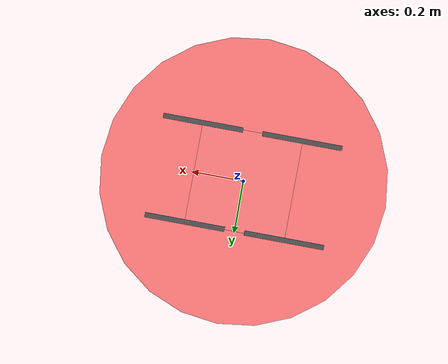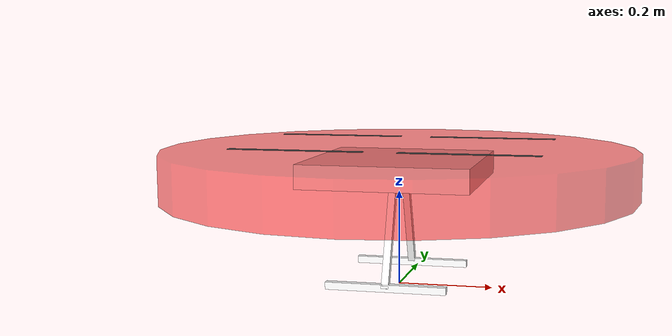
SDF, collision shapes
<?xml version="1.0" encoding="UTF-8"?>
<sdf version='1.9'>
  <model name='x500'>
    <include merge='true'>
      <uri>model://x500_base</uri>
    </include>

    <!-- Motor plugins -->
    <plugin filename="gz-sim-multicopter-motor-model-system" name="gz::sim::systems::MulticopterMotorModel">
      <robotNamespace>x500</robotNamespace>
      <jointName>rotor_0_joint</jointName>
      <linkName>rotor_0</linkName>
      <turningDirection>ccw</turningDirection>
      <timeConstantUp>0.0125</timeConstantUp>
      <timeConstantDown>0.025</timeConstantDown>
      <maxRotVelocity>1000.0</maxRotVelocity>
      <motorConstant>8.54858e-06</motorConstant>
      <momentConstant>0.016</momentConstant>
      <commandSubTopic>command/motor_speed</commandSubTopic>
      <actuator_number>0</actuator_number>
      <rotorDragCoefficient>8.06428e-05</rotorDragCoefficient>
      <rollingMomentCoefficient>1e-06</rollingMomentCoefficient>
      <rotorVelocitySlowdownSim>10</rotorVelocitySlowdownSim>
      <motorType>velocity</motorType>
    </plugin>

    <plugin filename="gz-sim-multicopter-motor-model-system" name="gz::sim::systems::MulticopterMotorModel">
      <robotNamespace>x500</robotNamespace>
      <jointName>rotor_1_joint</jointName>
      <linkName>rotor_1</linkName>
      <turningDirection>ccw</turningDirection>
      <timeConstantUp>0.0125</timeConstantUp>
      <timeConstantDown>0.025</timeConstantDown>
      <maxRotVelocity>1000.0</maxRotVelocity>
      <motorConstant>8.54858e-06</motorConstant>
      <momentConstant>0.016</momentConstant>
      <commandSubTopic>command/motor_speed</commandSubTopic>
      <actuator_number>1</actuator_number>
      <rotorDragCoefficient>8.06428e-05</rotorDragCoefficient>
      <rollingMomentCoefficient>1e-06</rollingMomentCoefficient>
      <rotorVelocitySlowdownSim>10</rotorVelocitySlowdownSim>
      <motorType>velocity</motorType>
    </plugin>

    <plugin filename="gz-sim-multicopter-motor-model-system" name="gz::sim::systems::MulticopterMotorModel">
      <robotNamespace>x500</robotNamespace>
      <jointName>rotor_2_joint</jointName>
      <linkName>rotor_2</linkName>
      <turningDirection>cw</turningDirection>
      <timeConstantUp>0.0125</timeConstantUp>
      <timeConstantDown>0.025</timeConstantDown>
      <maxRotVelocity>1000.0</maxRotVelocity>
      <motorConstant>8.54858e-06</motorConstant>
      <momentConstant>0.016</momentConstant>
      <commandSubTopic>command/motor_speed</commandSubTopic>
      <actuator_number>2</actuator_number>
      <rotorDragCoefficient>8.06428e-05</rotorDragCoefficient>
      <rollingMomentCoefficient>1e-06</rollingMomentCoefficient>
      <rotorVelocitySlowdownSim>10</rotorVelocitySlowdownSim>
      <motorType>velocity</motorType>
    </plugin>

    <plugin filename="gz-sim-multicopter-motor-model-system" name="gz::sim::systems::MulticopterMotorModel">
      <robotNamespace>x500</robotNamespace>
      <jointName>rotor_3_joint</jointName>
      <linkName>rotor_3</linkName>
      <turningDirection>cw</turningDirection>
      <timeConstantUp>0.0125</timeConstantUp>
      <timeConstantDown>0.025</timeConstantDown>
      <maxRotVelocity>1000.0</maxRotVelocity>
      <motorConstant>8.54858e-06</motorConstant>
      <momentConstant>0.016</momentConstant>
      <commandSubTopic>command/motor_speed</commandSubTopic>
      <actuator_number>3</actuator_number>
      <rotorDragCoefficient>8.06428e-05</rotorDragCoefficient>
      <rollingMomentCoefficient>1e-06</rollingMomentCoefficient>
      <rotorVelocitySlowdownSim>10</rotorVelocitySlowdownSim>
      <motorType>velocity</motorType>
    </plugin>

    <!-- Odometry plugin -->
    <plugin filename="gz-sim-odometry-publisher-system" name="gz::sim::systems::OdometryPublisher">
      <odom_topic>x500/odometry</odom_topic>
      <dimensions>3</dimensions>
    </plugin>

    <plugin name="gz::sim::systems::Contact" filename="gz-sim-contact-system" >

    </plugin>

    <!-- Velocity controller plugin -->
    <plugin filename="gz-sim-multicopter-control-system" name="gz::sim::systems::MulticopterVelocityControl">
      <robotNamespace>x500</robotNamespace>
      <commandSubTopic>command/twist</commandSubTopic>
      <enableSubTopic>enabled_motors</enableSubTopic>
      <comLinkName>base_link</comLinkName>
      <velocityGain>2.7 2.7 2.7</velocityGain>
      <attitudeGain>2 3 0.15</attitudeGain>
      <angularRateGain>0.4 0.52 0.18</angularRateGain>
      <maximumLinearAcceleration>2 2 2</maximumLinearAcceleration>

      <rotorConfiguration>
        <rotor>
          <jointName>rotor_0_joint</jointName>
          <forceConstant>8.54858e-06</forceConstant>
          <momentConstant>0.016</momentConstant>
          <direction>1</direction>
        </rotor>
        <rotor>
          <jointName>rotor_1_joint</jointName>
          <forceConstant>8.54858e-06</forceConstant>
          <momentConstant>0.016</momentConstant>
          <direction>1</direction>
        </rotor>
        <rotor>
          <jointName>rotor_2_joint</jointName>
          <forceConstant>8.54858e-06</forceConstant>
          <momentConstant>0.016</momentConstant>
          <direction>-1</direction>
        </rotor>
        <rotor>
          <jointName>rotor_3_joint</jointName>
          <forceConstant>8.54858e-06</forceConstant>
          <momentConstant>0.016</momentConstant>
          <direction>-1</direction>
        </rotor>
      </rotorConfiguration>
    </plugin>

  </model>
</sdf>

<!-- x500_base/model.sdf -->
<sdf version='1.9'>
  <model name='x500_base'>
    <pose>0 0 .24 0 0 0</pose>
    <self_collide>false</self_collide>
    <static>false</static>
    <link name="base_link">
      <inertial>
        <mass>2.0</mass>
        <inertia>
          <ixx>0.02166666666666667</ixx>
          <ixy>0</ixy>
          <ixz>0</ixz>
          <iyy>0.02166666666666667</iyy>
          <iyz>0</iyz>
          <izz>0.04000000000000001</izz>
        </inertia>
      </inertial>
      <gravity>true</gravity>
      <velocity_decay/>
      <visual name="base_link_visual">
        <pose>0 0 .025 0 0 3.141592654</pose>
        <geometry>
          <mesh>
            <scale>1 1 1</scale>
            <uri>model://x500_base/meshes/NXP-HGD-CF.dae</uri>
          </mesh>
        </geometry>
      </visual>
      <visual name="5010_motor_base_0">
        <pose>0.174 0.174 .032 0 0 -.45</pose>
        <geometry>
          <mesh>
            <scale>1 1 1</scale>
            <uri>model://x500_base/meshes/5010Base.dae</uri>
          </mesh>
        </geometry>
      </visual>
      <visual name="5010_motor_base_1">
        <pose>-0.174 0.174 .032 0 0 -.45</pose>
        <geometry>
          <mesh>
            <scale>1 1 1</scale>
            <uri>model://x500_base/meshes/5010Base.dae</uri>
          </mesh>
        </geometry>
      </visual>
      <visual name="5010_motor_base_2">
        <pose>0.174 -0.174 .032 0 0 -.45</pose>
        <geometry>
          <mesh>
            <scale>1 1 1</scale>
            <uri>model://x500_base/meshes/5010Base.dae</uri>
          </mesh>
        </geometry>
      </visual>
      <visual name="5010_motor_base_3">
        <pose>-0.174 -0.174 .032 0 0 -.45</pose>
        <geometry>
          <mesh>
            <scale>1 1 1</scale>
            <uri>model://x500_base/meshes/5010Base.dae</uri>
          </mesh>
        </geometry>
      </visual>
      <visual name="NXP_FMUK66_FRONT">
        <pose>0.047 .001 .043 1 0 1.57</pose>
        <cast_shadows>false</cast_shadows>
        <geometry>
          <plane>
            <normal>0 0 1</normal>
            <size>.013 .007</size>
          </plane>
        </geometry>
        <material>
          <diffuse>1.0 1.0 1.0</diffuse>
          <specular>1.0 1.0 1.0</specular>
          <pbr>
            <metal>
              <albedo_map>model://x500_base/materials/textures/nxp.png</albedo_map>
            </metal>
          </pbr>
        </material>
      </visual>
      <visual name="NXP_FMUK66_TOP">
        <pose>-0.023 0 .0515 0 0 -1.57</pose>
        <cast_shadows>false</cast_shadows>
        <geometry>
          <plane>
            <normal>0 0 1</normal>
            <size>.013 .007</size>
          </plane>
        </geometry>
        <material>
          <diffuse>1.0 1.0 1.0</diffuse>
          <specular>1.0 1.0 1.0</specular>
          <pbr>
            <metal>
              <albedo_map>model://x500_base/materials/textures/nxp.png</albedo_map>
            </metal>
          </pbr>
        </material>
      </visual>
      <visual name="RDDRONE_FMUK66_TOP">
        <pose>-.03 0 .0515 0 0 -1.57</pose>
        <cast_shadows>false</cast_shadows>
        <geometry>
          <plane>
            <normal>0 0 1</normal>
            <size>.032 .0034</size>
          </plane>
        </geometry>
        <material>
          <diffuse>1.0 1.0 1.0</diffuse>
          <specular>1.0 1.0 1.0</specular>
          <pbr>
            <metal>
              <albedo_map>model://x500_base/materials/textures/rd.png</albedo_map>
            </metal>
          </pbr>
        </material>
      </visual>
      <collision name="base_link_collision_0">
        <pose>0 0 .007 0 0 0</pose>
        <geometry>
          <box>
            <size>0.35355339059327373 0.35355339059327373 0.05</size>
          </box>
        </geometry>
        <surface>
          <contact>
            <ode>
              <min_depth>0.001</min_depth>
              <max_vel>0</max_vel>
            </ode>
          </contact>
          <friction>
            <ode/>
          </friction>
        </surface>
      </collision>
      <collision name="base_link_collision_1">
        <pose>0 -0.098 -.123 -0.35 0 0</pose>
        <geometry>
          <box>
            <size>0.015 0.015 0.21</size>
          </box>
        </geometry>
        <surface>
          <contact>
            <ode>
              <min_depth>0.001</min_depth>
              <max_vel>0</max_vel>
            </ode>
          </contact>
          <friction>
            <ode/>
          </friction>
        </surface>
      </collision>
      <collision name="base_link_collision_2">
        <pose>0 0.098 -.123 0.35 0 0</pose>
        <geometry>
          <box>
            <size>0.015 0.015 0.21</size>
          </box>
        </geometry>
        <surface>
          <contact>
            <ode>
              <min_depth>0.001</min_depth>
              <max_vel>0</max_vel>
            </ode>
          </contact>
          <friction>
            <ode/>
          </friction>
        </surface>
      </collision>
      <collision name="base_link_collision_3">
        <pose>0 -0.132 -.2195 0 0 0</pose>
        <geometry>
          <box>
            <size>0.25 0.015 0.015</size>
          </box>
        </geometry>
        <surface>
          <contact>
            <ode>
              <min_depth>0.001</min_depth>
              <max_vel>0</max_vel>
            </ode>
          </contact>
          <friction>
            <ode/>
          </friction>
        </surface>
      </collision>
      <collision name="base_link_collision_4">
        <pose>0 0.132 -.2195 0 0 0</pose>
        <geometry>
          <box>
            <size>0.25 0.015 0.015</size>
          </box>
        </geometry>
        <surface>
          <contact>
            <ode>
              <min_depth>0.001</min_depth>
              <max_vel>0</max_vel>
            </ode>
          </contact>
          <friction>
            <ode/>
          </friction>
        </surface>
      </collision>
      <sensor name="air_pressure_sensor" type="air_pressure">
        <always_on>1</always_on>
        <update_rate>50</update_rate>
        <air_pressure>
          <pressure>
            <noise type="gaussian">
              <mean>0</mean>
              <stddev>0.01</stddev>
            </noise>
          </pressure>
        </air_pressure>
      </sensor>
      <sensor name="imu_sensor" type="imu">
        <topic>x500/imu</topic>
        <always_on>1</always_on>
        <update_rate>250</update_rate>
        <imu>
          <angular_velocity>
            <x>
              <noise type="gaussian">
                <mean>0</mean>
                <stddev>0.00018665</stddev>
                <dynamic_bias_stddev>3.8785e-05</dynamic_bias_stddev>
                <dynamic_bias_correlation_time>1000</dynamic_bias_correlation_time>
              </noise>
            </x>
            <y>
              <noise type="gaussian">
                <mean>0</mean>
                <stddev>0.00018665</stddev>
                <dynamic_bias_stddev>3.8785e-05</dynamic_bias_stddev>
                <dynamic_bias_correlation_time>1000</dynamic_bias_correlation_time>
              </noise>
            </y>
            <z>
              <noise type="gaussian">
                <mean>0</mean>
                <stddev>0.00018665</stddev>
                <dynamic_bias_stddev>3.8785e-05</dynamic_bias_stddev>
                <dynamic_bias_correlation_time>1000</dynamic_bias_correlation_time>
              </noise>
            </z>
          </angular_velocity>
          <linear_acceleration>
            <x>
              <noise type="gaussian">
                <mean>0</mean>
                <stddev>0.00186</stddev>
                <dynamic_bias_stddev>0.006</dynamic_bias_stddev>
                <dynamic_bias_correlation_time>300</dynamic_bias_correlation_time>
              </noise>
            </x>
            <y>
              <noise type="gaussian">
                <mean>0</mean>
                <stddev>0.00186</stddev>
                <dynamic_bias_stddev>0.006</dynamic_bias_stddev>
                <dynamic_bias_correlation_time>300</dynamic_bias_correlation_time>
              </noise>
            </y>
            <z>
              <noise type="gaussian">
                <mean>0</mean>
                <stddev>0.00186</stddev>
                <dynamic_bias_stddev>0.006</dynamic_bias_stddev>
                <dynamic_bias_correlation_time>300</dynamic_bias_correlation_time>
              </noise>
            </z>
          </linear_acceleration>
        </imu>
      </sensor>
      <sensor name="navsat_sensor" type="navsat">
        <always_on>1</always_on>
        <update_rate>30</update_rate>
      </sensor>
    </link>

    <joint name="collision_joint" type="fixed">
      <parent>base_link</parent>
      <child>collision_link</child>
    </joint>
    <link name="collision_link">
      <!-- 1) Disable gravity on this link -->
      <gravity>false</gravity>
      <!-- 2) Collision geeometry on this link -->
        <collision name="collision_cylinder">
          <geometry>
            <cylinder>
              <radius>0.5</radius>
              <length>0.1</length>
            </cylinder>
          </geometry>
          <!-- 3) Surface parameters: no friction, no bounce, no physics response -->
          <surface>
            <friction>
              <ode>
                <mu>0</mu>
                <mu2>0</mu2>
              </ode>
            </friction>
            <bounce>
              <restitution_coefficient>0</restitution_coefficient>
              <threshold>1</threshold>
            </bounce>
            <contact>
              <!-- allow contact sensing but suppress forces completely -->
              <collide_without_contact>true</collide_without_contact>
            </contact>
          </surface>
        </collision>
        <visual name="visual">
          <geometry>
            <cylinder>
              <radius>0.5</radius>
              <length>0.1</length>
            </cylinder>
          </geometry>
          <material>
            <!-- RGBA: red with 50% opacity -->
            <ambient>1 0 0 0.5</ambient>
            <diffuse>1 0 0 0.5</diffuse>
            <!-- optional specular/emissive if you like -->
            <specular>0.1 0.1 0.1 0.5</specular>
            <emissive>0 0 0 0</emissive>
          </material>
        </visual>
        <sensor name='sensor_contact' type='contact'>
          <contact>
            <collision>collision_cylinder</collision>
            <topic>x500/collisions</topic>
          </contact>
          <always_on>1</always_on>
          <update_rate>100</update_rate>
        </sensor>
      </link>

    <link name="rotor_0">
      <gravity>true</gravity>
      <self_collide>false</self_collide>
      <velocity_decay/>
      <pose>0.174 -0.174 0.06 0 0 0</pose>
      <inertial>
          <mass>0.016076923076923075</mass>
          <inertia>
            <ixx>3.8464910483993325e-07</ixx>
            <iyy>2.6115851691700804e-05</iyy>
            <izz>2.649858234714004e-05</izz>
          </inertia>
        </inertial>
      <visual name="rotor_0_visual">
        <pose>-0.022 -0.14638461538461536 -0.016 0 0 0</pose>
        <geometry>
          <mesh>
            <scale>0.8461538461538461 0.8461538461538461 0.8461538461538461</scale>
            <uri>model://x500_base/meshes/1345_prop_ccw.stl</uri>
          </mesh>
        </geometry>
          <material>
            <ambient>0.3 0.3 0.3 1</ambient>
            <diffuse>0.3 0.3 0.3 1</diffuse>
            <specular>0.1 0.1 0.1 1</specular>
            <emissive>0 0 0 1</emissive>
          </material>
      </visual>
      <visual name="rotor_0_visual_motor_bell">
        <pose>0 0 -.032 0 0 0</pose>
        <geometry>
          <mesh>
            <scale>1 1 1</scale>
            <uri>model://x500_base/meshes/5010Bell.dae</uri>
          </mesh>
        </geometry>
      </visual>
      <collision name="rotor_0_collision">
        <pose>0 0 0 0 0 0 </pose>
        <geometry>
          <box>
            <size>0.2792307692307692 0.016923076923076923 0.0008461538461538462</size>
          </box>
        </geometry>
        <surface>
          <contact>
            <ode>
              <min_depth>0.001</min_depth>
              <max_vel>0</max_vel>
            </ode>
          </contact>
          <friction>
            <ode/>
          </friction>
        </surface>
      </collision>
    </link>
    <joint name="rotor_0_joint" type="revolute">
      <parent>base_link</parent>
      <child>rotor_0</child>
      <axis>
        <xyz>0 0 1</xyz>
        <limit>
          <lower>-1e+16</lower>
          <upper>1e+16</upper>
        </limit>
        <dynamics>
          <spring_reference>0</spring_reference>
          <spring_stiffness>0</spring_stiffness>
        </dynamics>
      </axis>
    </joint>
    <link name="rotor_1">
      <gravity>true</gravity>
      <self_collide>false</self_collide>
      <velocity_decay/>
      <pose>-0.174 0.174 0.06 0 0 0</pose>
      <inertial>
          <mass>0.016076923076923075</mass>
          <inertia>
            <ixx>3.8464910483993325e-07</ixx>
            <iyy>2.6115851691700804e-05</iyy>
            <izz>2.649858234714004e-05</izz>
          </inertia>
        </inertial>
      <visual name="rotor_1_visual">
        <pose>-0.022 -0.14638461538461536 -0.016 0 0 0</pose>
        <geometry>
          <mesh>
            <scale>0.8461538461538461 0.8461538461538461 0.8461538461538461</scale>
            <uri>model://x500_base/meshes/1345_prop_ccw.stl</uri>
          </mesh>
        </geometry>
          <material>
            <ambient>0.3 0.3 0.3 1</ambient>
            <diffuse>0.3 0.3 0.3 1</diffuse>
            <specular>0.1 0.1 0.1 1</specular>
            <emissive>0 0 0 1</emissive>
          </material>
      </visual>
      <visual name="rotor_1_visual_motor_top">
        <pose>0 0 -.032 0 0 0</pose>
        <geometry>
          <mesh>
            <scale>1 1 1</scale>
            <uri>model://x500_base/meshes/5010Bell.dae</uri>
          </mesh>
        </geometry>
      </visual>
      <collision name="rotor_1_collision">
        <pose>0 0 0 0 0 0 </pose>
        <geometry>
          <box>
            <size>0.2792307692307692 0.016923076923076923 0.0008461538461538462</size>
          </box>
        </geometry>
        <surface>
          <contact>
            <ode>
              <min_depth>0.001</min_depth>
              <max_vel>0</max_vel>
            </ode>
          </contact>
          <friction>
            <ode/>
          </friction>
        </surface>
      </collision>
    </link>
    <joint name="rotor_1_joint" type="revolute">
      <parent>base_link</parent>
      <child>rotor_1</child>
      <axis>
        <xyz>0 0 1</xyz>
        <limit>
          <lower>-1e+16</lower>
          <upper>1e+16</upper>
        </limit>
        <dynamics>
          <spring_reference>0</spring_reference>
          <spring_stiffness>0</spring_stiffness>
        </dynamics>
      </axis>
    </joint>
    <link name="rotor_2">
      <gravity>true</gravity>
      <self_collide>false</self_collide>
      <velocity_decay/>
      <pose>0.174 0.174 0.06 0 0 0</pose>
      <inertial>
          <mass>0.016076923076923075</mass>
          <inertia>
            <ixx>3.8464910483993325e-07</ixx>
            <iyy>2.6115851691700804e-05</iyy>
            <izz>2.649858234714004e-05</izz>
          </inertia>
        </inertial>
      <visual name="rotor_2_visual">
        <pose>-0.022 -0.14638461538461536 -0.016 0 0 0</pose>
        <geometry>
          <mesh>
            <scale>0.8461538461538461 0.8461538461538461 0.8461538461538461</scale>
            <uri>model://x500_base/meshes/1345_prop_cw.stl</uri>
          </mesh>
        </geometry>
          <material>
            <ambient>0.3 0.3 0.3 1</ambient>
            <diffuse>0.3 0.3 0.3 1</diffuse>
            <specular>0.1 0.1 0.1 1</specular>
            <emissive>0 0 0 1</emissive>
          </material>
      </visual>
      <visual name="rotor_2_visual_motor_top">
        <pose>0 0 -.032 0 0 0</pose>
        <geometry>
          <mesh>
            <scale>1 1 1</scale>
            <uri>model://x500_base/meshes/5010Bell.dae</uri>
          </mesh>
        </geometry>
      </visual>
      <collision name="rotor_2_collision">
        <pose>0 0 0 0 0 0 </pose>
        <geometry>
          <box>
            <size>0.2792307692307692 0.016923076923076923 0.0008461538461538462</size>
          </box>
        </geometry>
        <surface>
          <contact>
            <ode>
              <min_depth>0.001</min_depth>
              <max_vel>0</max_vel>
            </ode>
          </contact>
          <friction>
            <ode/>
          </friction>
        </surface>
      </collision>
    </link>
    <joint name="rotor_2_joint" type="revolute">
      <parent>base_link</parent>
      <child>rotor_2</child>
      <axis>
        <xyz>0 0 1</xyz>
        <limit>
          <lower>-1e+16</lower>
          <upper>1e+16</upper>
        </limit>
        <dynamics>
          <spring_reference>0</spring_reference>
          <spring_stiffness>0</spring_stiffness>
        </dynamics>
      </axis>
    </joint>
    <link name="rotor_3">
      <gravity>true</gravity>
      <self_collide>false</self_collide>
      <velocity_decay/>
      <pose>-0.174 -0.174 0.06 0 0 0</pose>
      <inertial>
          <mass>0.016076923076923075</mass>
          <inertia>
            <ixx>3.8464910483993325e-07</ixx>
            <iyy>2.6115851691700804e-05</iyy>
            <izz>2.649858234714004e-05</izz>
          </inertia>
        </inertial>
      <visual name="rotor_3_visual">
        <pose>-0.022 -0.14638461538461536 -0.016 0 0 0</pose>
        <geometry>
          <mesh>
            <scale>0.8461538461538461 0.8461538461538461 0.8461538461538461</scale>
            <uri>model://x500_base/meshes/1345_prop_cw.stl</uri>
          </mesh>
        </geometry>
          <material>
            <ambient>0.3 0.3 0.3 1</ambient>
            <diffuse>0.3 0.3 0.3 1</diffuse>
            <specular>0.1 0.1 0.1 1</specular>
            <emissive>0 0 0 1</emissive>
          </material>
      </visual>
      <visual name="rotor_3_visual_motor_top">
        <pose>0 0 -.032 0 0 0</pose>
        <geometry>
          <mesh>
            <scale>1 1 1</scale>
            <uri>model://x500_base/meshes/5010Bell.dae</uri>
          </mesh>
        </geometry>
      </visual>
      <collision name="rotor_3_collision">
        <pose>0 0 0 0 0 0 </pose>
        <geometry>
          <box>
            <size>0.2792307692307692 0.016923076923076923 0.0008461538461538462</size>
          </box>
        </geometry>
        <surface>
          <contact>
            <ode>
              <min_depth>0.001</min_depth>
              <max_vel>0</max_vel>
            </ode>
          </contact>
          <friction>
            <ode/>
          </friction>
        </surface>
      </collision>
    </link>
    <joint name="rotor_3_joint" type="revolute">
      <parent>base_link</parent>
      <child>rotor_3</child>
      <axis>
        <xyz>0 0 1</xyz>
        <limit>
          <lower>-1e+16</lower>
          <upper>1e+16</upper>
        </limit>
        <dynamics>
          <spring_reference>0</spring_reference>
          <spring_stiffness>0</spring_stiffness>
        </dynamics>
      </axis>
    </joint>
  </model>
</sdf>
